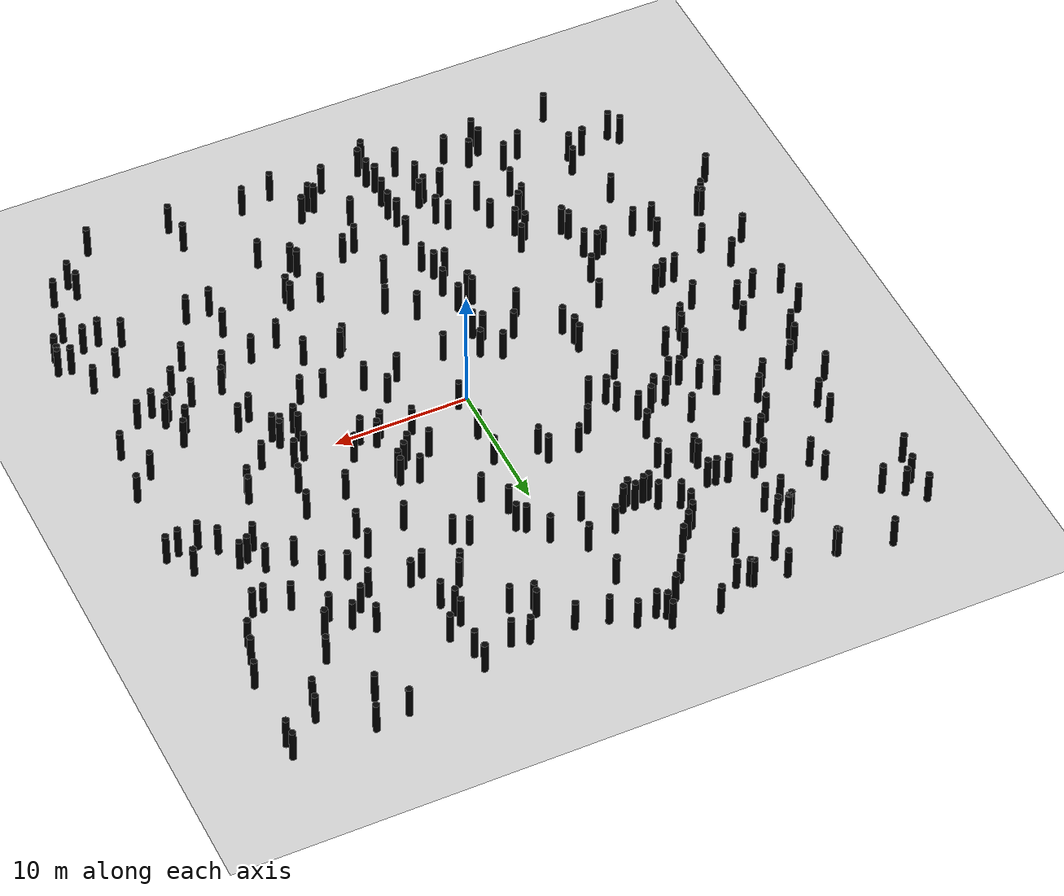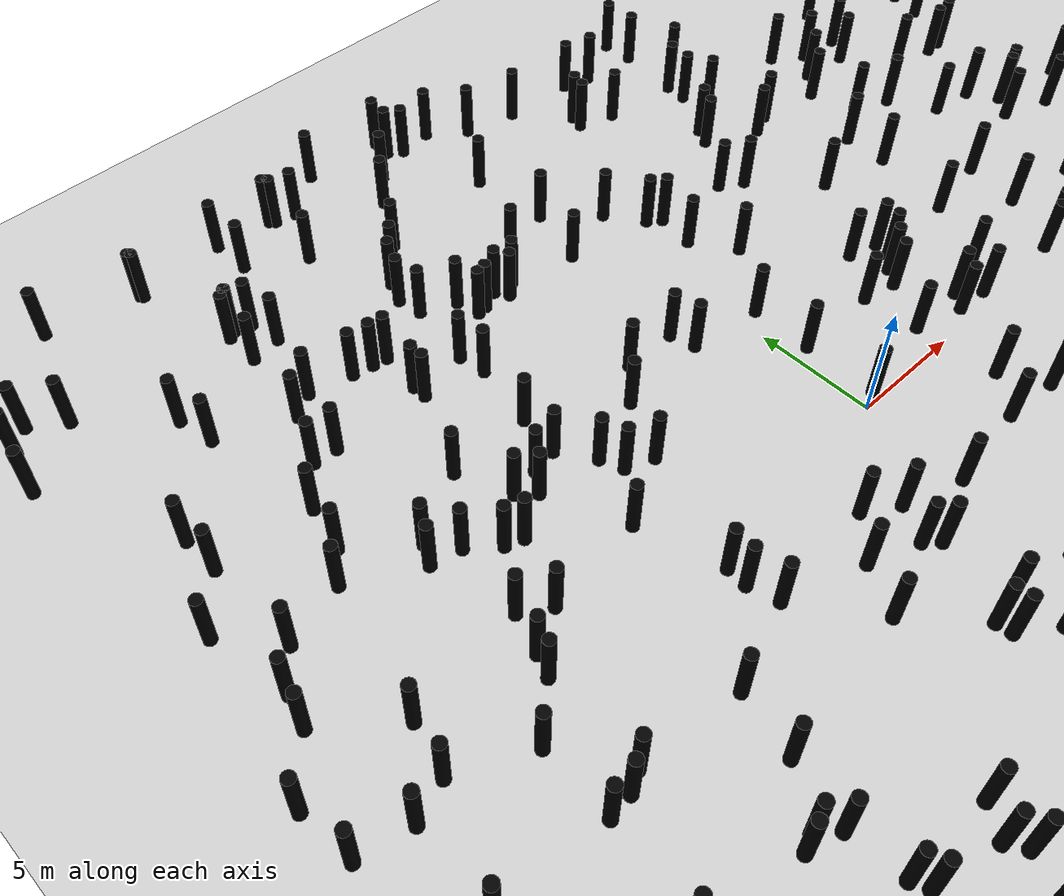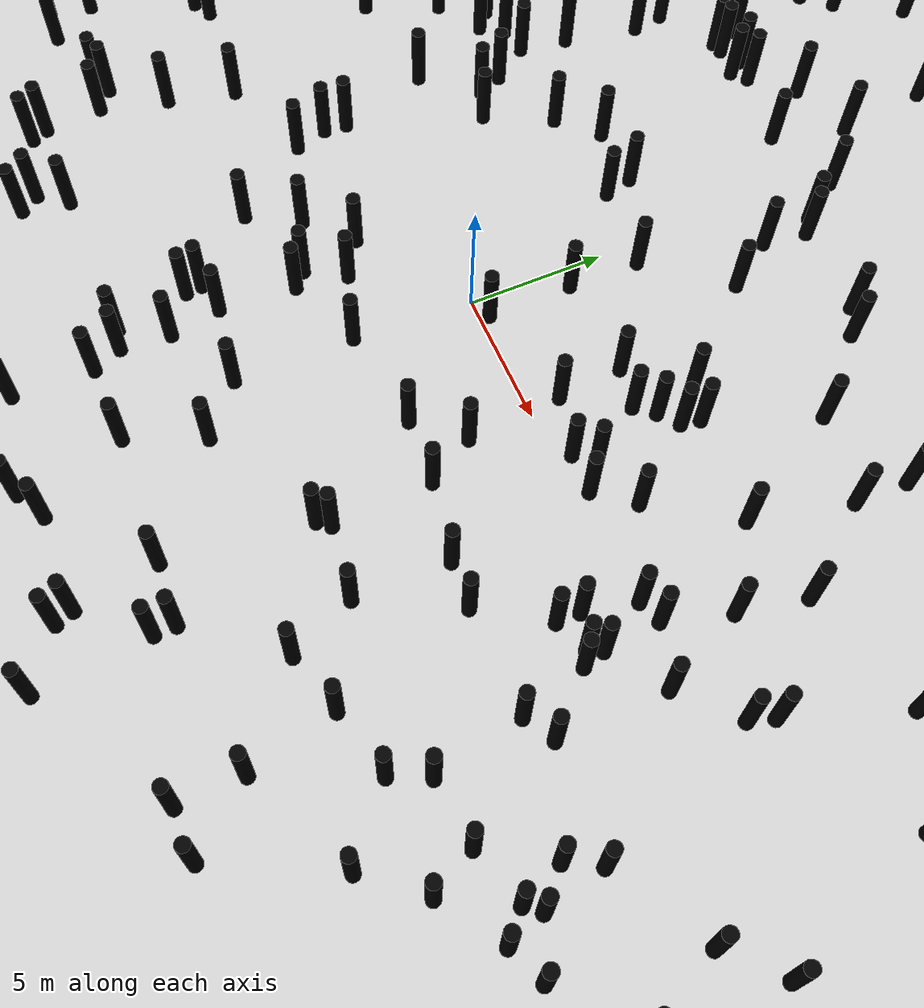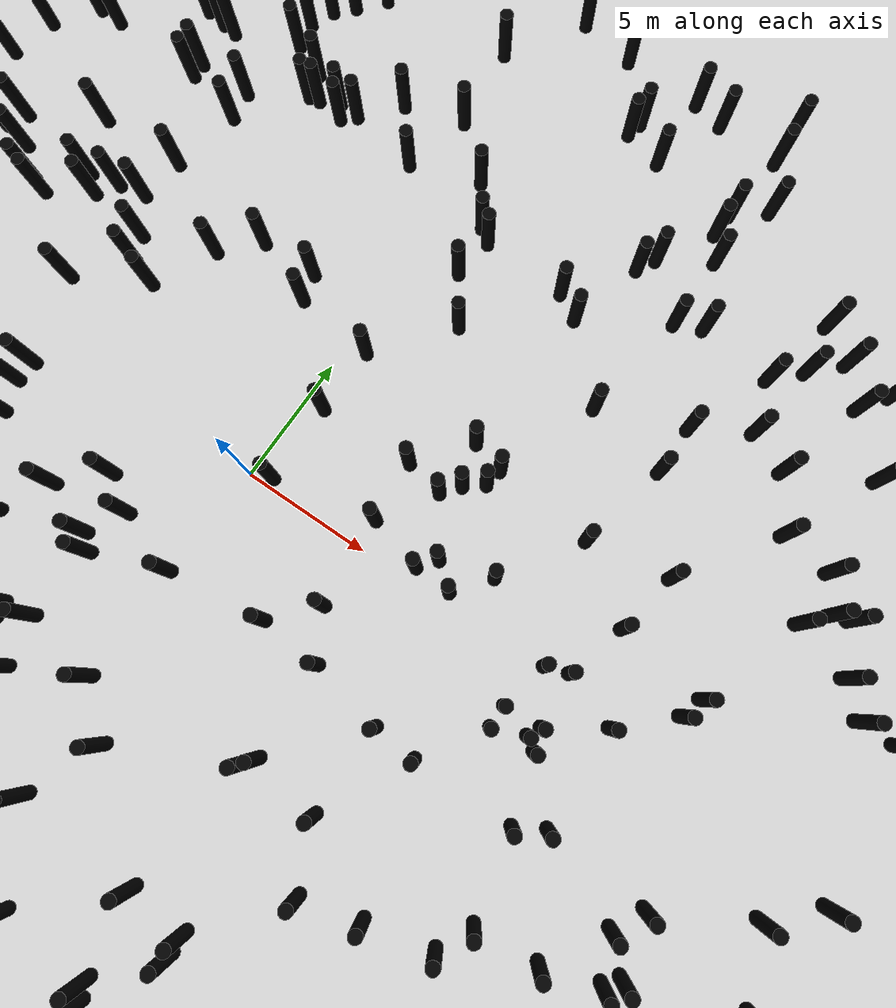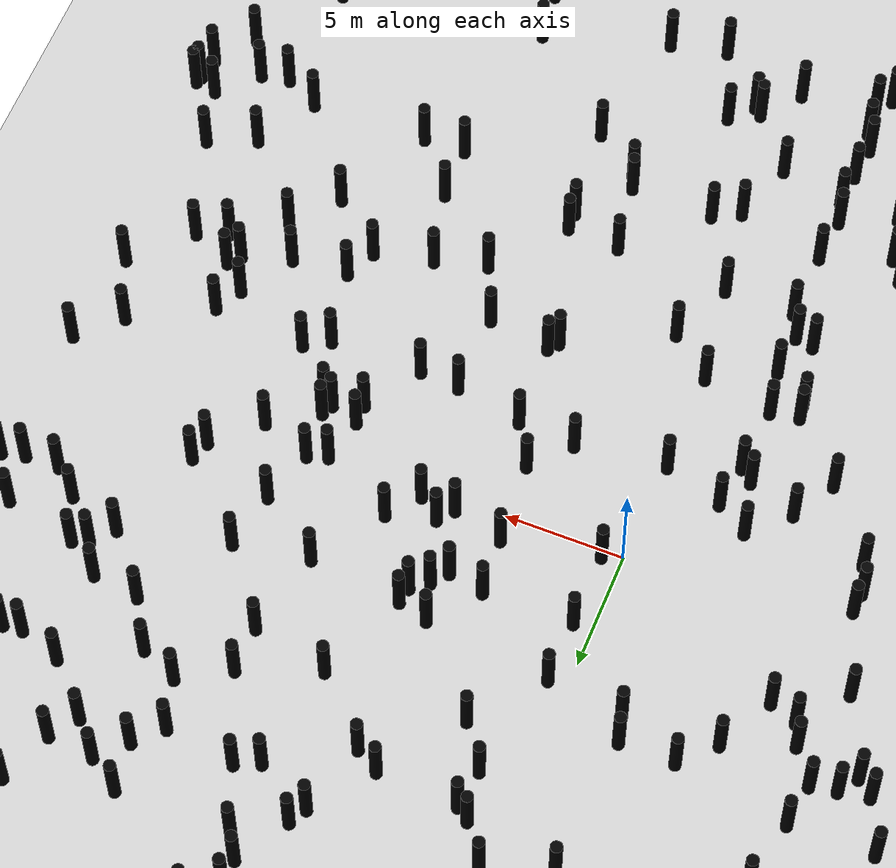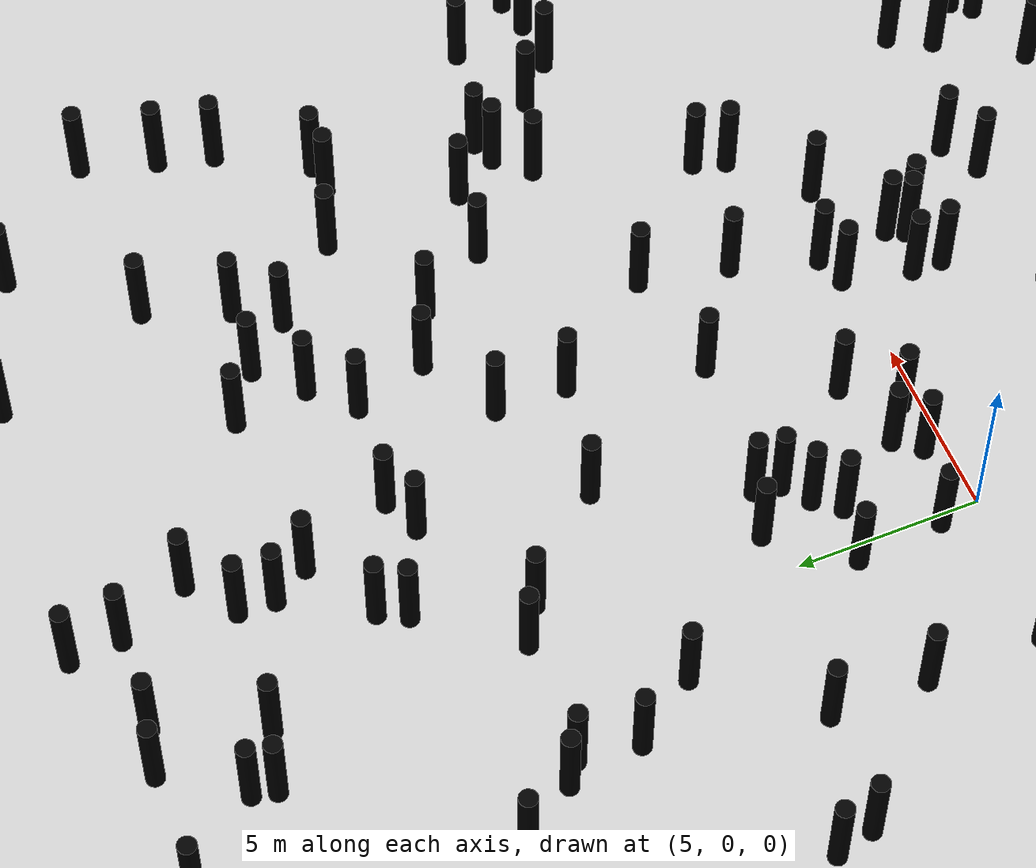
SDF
<?xml version="1.0"?>

<sdf version="1.6">
    <world name="medium">
        <physics name="4ms" type="ignored">
            <max_step_size>0.004</max_step_size>
            <real_time_factor>0.25</real_time_factor>
        </physics>
        <plugin
            filename="ignition-gazebo-physics-system"
            name="ignition::gazebo::systems::Physics">
        </plugin>
        <plugin
            filename="ignition-gazebo-scene-broadcaster-system"
            name="ignition::gazebo::systems::SceneBroadcaster">
        </plugin>
        <plugin
            filename="ignition-gazebo-user-commands-system"
            name="ignition::gazebo::systems::UserCommands">
        </plugin>
        <plugin
            filename="ignition-gazebo-sensors-system"
            name="ignition::gazebo::systems::Sensors">
            <render_engine>ogre2</render_engine>
        </plugin>

        <include>
            <uri>model://ground_plane</uri>
        </include>
        <include>
            <uri>model://pole</uri>
            <name>pole1</name>
            <pose>8.86 -8.12 0 0 0 0</pose>
        </include>
        <include>
            <uri>model://pole</uri>
            <name>pole2</name>
            <pose>5.49 12.17 0 0 0 0</pose>
        </include>
        <include>
            <uri>model://pole</uri>
            <name>pole3</name>
            <pose>-3.64 24.76 0 0 0 0</pose>
        </include>
        <include>
            <uri>model://pole</uri>
            <name>pole4</name>
            <pose>-6.11 14.06 0 0 0 0</pose>
        </include>
        <include>
            <uri>model://pole</uri>
            <name>pole5</name>
            <pose>9.91 -10.49 0 0 0 0</pose>
        </include>
        <include>
            <uri>model://pole</uri>
            <name>pole6</name>
            <pose>9.66 16.51 0 0 0 0</pose>
        </include>
        <include>
            <uri>model://pole</uri>
            <name>pole7</name>
            <pose>23.81 4.72 0 0 0 0</pose>
        </include>
        <include>
            <uri>model://pole</uri>
            <name>pole8</name>
            <pose>15.79 15.7 0 0 0 0</pose>
        </include>
        <include>
            <uri>model://pole</uri>
            <name>pole9</name>
            <pose>-2.5 -22.59 0 0 0 0</pose>
        </include>
        <include>
            <uri>model://pole</uri>
            <name>pole10</name>
            <pose>12.52 0.24 0 0 0 0</pose>
        </include>
        <include>
            <uri>model://pole</uri>
            <name>pole11</name>
            <pose>4.4 -24.26 0 0 0 0</pose>
        </include>
        <include>
            <uri>model://pole</uri>
            <name>pole12</name>
            <pose>18.83 12.42 0 0 0 0</pose>
        </include>
        <include>
            <uri>model://pole</uri>
            <name>pole13</name>
            <pose>-11.71 5.55 0 0 0 0</pose>
        </include>
        <include>
            <uri>model://pole</uri>
            <name>pole14</name>
            <pose>10.34 19.49 0 0 0 0</pose>
        </include>
        <include>
            <uri>model://pole</uri>
            <name>pole15</name>
            <pose>-23.54 8.69 0 0 0 0</pose>
        </include>
        <include>
            <uri>model://pole</uri>
            <name>pole16</name>
            <pose>-16.08 6.73 0 0 0 0</pose>
        </include>
        <include>
            <uri>model://pole</uri>
            <name>pole17</name>
            <pose>-6.05 -16.14 0 0 0 0</pose>
        </include>
        <include>
            <uri>model://pole</uri>
            <name>pole18</name>
            <pose>23.93 23.21 0 0 0 0</pose>
        </include>
        <include>
            <uri>model://pole</uri>
            <name>pole19</name>
            <pose>17.05 22.1 0 0 0 0</pose>
        </include>
        <include>
            <uri>model://pole</uri>
            <name>pole20</name>
            <pose>0.79 0.33 0 0 0 0</pose>
        </include>
        <include>
            <uri>model://pole</uri>
            <name>pole21</name>
            <pose>-10.55 -12.8 0 0 0 0</pose>
        </include>
        <include>
            <uri>model://pole</uri>
            <name>pole22</name>
            <pose>19.03 6.41 0 0 0 0</pose>
        </include>
        <include>
            <uri>model://pole</uri>
            <name>pole23</name>
            <pose>-8.18 17.99 0 0 0 0</pose>
        </include>
        <include>
            <uri>model://pole</uri>
            <name>pole24</name>
            <pose>19.52 -4.45 0 0 0 0</pose>
        </include>
        <include>
            <uri>model://pole</uri>
            <name>pole25</name>
            <pose>-6.9 -19.42 0 0 0 0</pose>
        </include>
        <include>
            <uri>model://pole</uri>
            <name>pole26</name>
            <pose>-22.87 5.32 0 0 0 0</pose>
        </include>
        <include>
            <uri>model://pole</uri>
            <name>pole27</name>
            <pose>4.05 19.33 0 0 0 0</pose>
        </include>
        <include>
            <uri>model://pole</uri>
            <name>pole28</name>
            <pose>-16.49 5.92 0 0 0 0</pose>
        </include>
        <include>
            <uri>model://pole</uri>
            <name>pole29</name>
            <pose>-24.7 -0.24 0 0 0 0</pose>
        </include>
        <include>
            <uri>model://pole</uri>
            <name>pole30</name>
            <pose>23.92 -5.19 0 0 0 0</pose>
        </include>
        <include>
            <uri>model://pole</uri>
            <name>pole31</name>
            <pose>-16.48 0.13 0 0 0 0</pose>
        </include>
        <include>
            <uri>model://pole</uri>
            <name>pole32</name>
            <pose>6.62 3.91 0 0 0 0</pose>
        </include>
        <include>
            <uri>model://pole</uri>
            <name>pole33</name>
            <pose>24.74 -14.73 0 0 0 0</pose>
        </include>
        <include>
            <uri>model://pole</uri>
            <name>pole34</name>
            <pose>-24.53 -5.99 0 0 0 0</pose>
        </include>
        <include>
            <uri>model://pole</uri>
            <name>pole35</name>
            <pose>0.17 -19.47 0 0 0 0</pose>
        </include>
        <include>
            <uri>model://pole</uri>
            <name>pole36</name>
            <pose>7.51 -13.47 0 0 0 0</pose>
        </include>
        <include>
            <uri>model://pole</uri>
            <name>pole37</name>
            <pose>-7.34 13.62 0 0 0 0</pose>
        </include>
        <include>
            <uri>model://pole</uri>
            <name>pole38</name>
            <pose>9.37 22.86 0 0 0 0</pose>
        </include>
        <include>
            <uri>model://pole</uri>
            <name>pole39</name>
            <pose>-21.78 6.7 0 0 0 0</pose>
        </include>
        <include>
            <uri>model://pole</uri>
            <name>pole40</name>
            <pose>-2.85 -10.18 0 0 0 0</pose>
        </include>
        <include>
            <uri>model://pole</uri>
            <name>pole41</name>
            <pose>-12.17 14.35 0 0 0 0</pose>
        </include>
        <include>
            <uri>model://pole</uri>
            <name>pole42</name>
            <pose>-11.14 6.36 0 0 0 0</pose>
        </include>
        <include>
            <uri>model://pole</uri>
            <name>pole43</name>
            <pose>-12.74 23.98 0 0 0 0</pose>
        </include>
        <include>
            <uri>model://pole</uri>
            <name>pole44</name>
            <pose>21.37 22.13 0 0 0 0</pose>
        </include>
        <include>
            <uri>model://pole</uri>
            <name>pole45</name>
            <pose>21.0 -22.09 0 0 0 0</pose>
        </include>
        <include>
            <uri>model://pole</uri>
            <name>pole46</name>
            <pose>-15.24 5.67 0 0 0 0</pose>
        </include>
        <include>
            <uri>model://pole</uri>
            <name>pole47</name>
            <pose>-20.49 -19.62 0 0 0 0</pose>
        </include>
        <include>
            <uri>model://pole</uri>
            <name>pole48</name>
            <pose>-14.87 14.88 0 0 0 0</pose>
        </include>
        <include>
            <uri>model://pole</uri>
            <name>pole49</name>
            <pose>-6.31 6.23 0 0 0 0</pose>
        </include>
        <include>
            <uri>model://pole</uri>
            <name>pole50</name>
            <pose>-5.75 13.52 0 0 0 0</pose>
        </include>
        <include>
            <uri>model://pole</uri>
            <name>pole51</name>
            <pose>17.74 15.52 0 0 0 0</pose>
        </include>
        <include>
            <uri>model://pole</uri>
            <name>pole52</name>
            <pose>-9.22 16.34 0 0 0 0</pose>
        </include>
        <include>
            <uri>model://pole</uri>
            <name>pole53</name>
            <pose>-10.05 6.56 0 0 0 0</pose>
        </include>
        <include>
            <uri>model://pole</uri>
            <name>pole54</name>
            <pose>-18.05 -18.91 0 0 0 0</pose>
        </include>
        <include>
            <uri>model://pole</uri>
            <name>pole55</name>
            <pose>0.44 -13.03 0 0 0 0</pose>
        </include>
        <include>
            <uri>model://pole</uri>
            <name>pole56</name>
            <pose>-11.03 -14.9 0 0 0 0</pose>
        </include>
        <include>
            <uri>model://pole</uri>
            <name>pole57</name>
            <pose>18.9 -5.58 0 0 0 0</pose>
        </include>
        <include>
            <uri>model://pole</uri>
            <name>pole58</name>
            <pose>-22.73 -4.12 0 0 0 0</pose>
        </include>
        <include>
            <uri>model://pole</uri>
            <name>pole59</name>
            <pose>1.84 10.69 0 0 0 0</pose>
        </include>
        <include>
            <uri>model://pole</uri>
            <name>pole60</name>
            <pose>-11.55 14.26 0 0 0 0</pose>
        </include>
        <include>
            <uri>model://pole</uri>
            <name>pole61</name>
            <pose>22.78 14.21 0 0 0 0</pose>
        </include>
        <include>
            <uri>model://pole</uri>
            <name>pole62</name>
            <pose>5.58 21.94 0 0 0 0</pose>
        </include>
        <include>
            <uri>model://pole</uri>
            <name>pole63</name>
            <pose>6.14 5.52 0 0 0 0</pose>
        </include>
        <include>
            <uri>model://pole</uri>
            <name>pole64</name>
            <pose>-4.08 -2.76 0 0 0 0</pose>
        </include>
        <include>
            <uri>model://pole</uri>
            <name>pole65</name>
            <pose>2.02 -21.78 0 0 0 0</pose>
        </include>
        <include>
            <uri>model://pole</uri>
            <name>pole66</name>
            <pose>-9.02 15.27 0 0 0 0</pose>
        </include>
        <include>
            <uri>model://pole</uri>
            <name>pole67</name>
            <pose>23.97 24.38 0 0 0 0</pose>
        </include>
        <include>
            <uri>model://pole</uri>
            <name>pole68</name>
            <pose>5.02 -2.34 0 0 0 0</pose>
        </include>
        <include>
            <uri>model://pole</uri>
            <name>pole69</name>
            <pose>-15.71 12.06 0 0 0 0</pose>
        </include>
        <include>
            <uri>model://pole</uri>
            <name>pole70</name>
            <pose>-4.39 -8.53 0 0 0 0</pose>
        </include>
        <include>
            <uri>model://pole</uri>
            <name>pole71</name>
            <pose>2.33 22.09 0 0 0 0</pose>
        </include>
        <include>
            <uri>model://pole</uri>
            <name>pole72</name>
            <pose>-10.09 -21.29 0 0 0 0</pose>
        </include>
        <include>
            <uri>model://pole</uri>
            <name>pole73</name>
            <pose>7.45 1.24 0 0 0 0</pose>
        </include>
        <include>
            <uri>model://pole</uri>
            <name>pole74</name>
            <pose>-6.67 -6.09 0 0 0 0</pose>
        </include>
        <include>
            <uri>model://pole</uri>
            <name>pole75</name>
            <pose>17.04 8.82 0 0 0 0</pose>
        </include>
        <include>
            <uri>model://pole</uri>
            <name>pole76</name>
            <pose>-4.31 -9.14 0 0 0 0</pose>
        </include>
        <include>
            <uri>model://pole</uri>
            <name>pole77</name>
            <pose>20.48 7.52 0 0 0 0</pose>
        </include>
        <include>
            <uri>model://pole</uri>
            <name>pole78</name>
            <pose>-10.06 23.58 0 0 0 0</pose>
        </include>
        <include>
            <uri>model://pole</uri>
            <name>pole79</name>
            <pose>-11.72 11.8 0 0 0 0</pose>
        </include>
        <include>
            <uri>model://pole</uri>
            <name>pole80</name>
            <pose>-21.11 -18.87 0 0 0 0</pose>
        </include>
        <include>
            <uri>model://pole</uri>
            <name>pole81</name>
            <pose>-3.55 -4.99 0 0 0 0</pose>
        </include>
        <include>
            <uri>model://pole</uri>
            <name>pole82</name>
            <pose>-11.2 -22.1 0 0 0 0</pose>
        </include>
        <include>
            <uri>model://pole</uri>
            <name>pole83</name>
            <pose>6.92 0.57 0 0 0 0</pose>
        </include>
        <include>
            <uri>model://pole</uri>
            <name>pole84</name>
            <pose>-22.88 -9.77 0 0 0 0</pose>
        </include>
        <include>
            <uri>model://pole</uri>
            <name>pole85</name>
            <pose>2.36 -22.07 0 0 0 0</pose>
        </include>
        <include>
            <uri>model://pole</uri>
            <name>pole86</name>
            <pose>-2.62 -15.98 0 0 0 0</pose>
        </include>
        <include>
            <uri>model://pole</uri>
            <name>pole87</name>
            <pose>-4.88 22.7 0 0 0 0</pose>
        </include>
        <include>
            <uri>model://pole</uri>
            <name>pole88</name>
            <pose>-21.44 -6.27 0 0 0 0</pose>
        </include>
        <include>
            <uri>model://pole</uri>
            <name>pole89</name>
            <pose>23.54 6.8 0 0 0 0</pose>
        </include>
        <include>
            <uri>model://pole</uri>
            <name>pole90</name>
            <pose>18.45 -24.62 0 0 0 0</pose>
        </include>
        <include>
            <uri>model://pole</uri>
            <name>pole91</name>
            <pose>-17.06 -23.33 0 0 0 0</pose>
        </include>
        <include>
            <uri>model://pole</uri>
            <name>pole92</name>
            <pose>-16.56 -17.37 0 0 0 0</pose>
        </include>
        <include>
            <uri>model://pole</uri>
            <name>pole93</name>
            <pose>19.56 -7.13 0 0 0 0</pose>
        </include>
        <include>
            <uri>model://pole</uri>
            <name>pole94</name>
            <pose>12.06 -22.14 0 0 0 0</pose>
        </include>
        <include>
            <uri>model://pole</uri>
            <name>pole95</name>
            <pose>-0.22 -4.41 0 0 0 0</pose>
        </include>
        <include>
            <uri>model://pole</uri>
            <name>pole96</name>
            <pose>-15.83 14.25 0 0 0 0</pose>
        </include>
        <include>
            <uri>model://pole</uri>
            <name>pole97</name>
            <pose>-16.6 23.6 0 0 0 0</pose>
        </include>
        <include>
            <uri>model://pole</uri>
            <name>pole98</name>
            <pose>7.35 14.6 0 0 0 0</pose>
        </include>
        <include>
            <uri>model://pole</uri>
            <name>pole99</name>
            <pose>14.44 16.62 0 0 0 0</pose>
        </include>
        <include>
            <uri>model://pole</uri>
            <name>pole100</name>
            <pose>-13.32 8.31 0 0 0 0</pose>
        </include>
        <include>
            <uri>model://pole</uri>
            <name>pole101</name>
            <pose>3.07 8.91 0 0 0 0</pose>
        </include>
        <include>
            <uri>model://pole</uri>
            <name>pole102</name>
            <pose>9.67 13.5 0 0 0 0</pose>
        </include>
        <include>
            <uri>model://pole</uri>
            <name>pole103</name>
            <pose>-12.24 -19.93 0 0 0 0</pose>
        </include>
        <include>
            <uri>model://pole</uri>
            <name>pole104</name>
            <pose>8.39 0.5 0 0 0 0</pose>
        </include>
        <include>
            <uri>model://pole</uri>
            <name>pole105</name>
            <pose>5.98 -16.96 0 0 0 0</pose>
        </include>
        <include>
            <uri>model://pole</uri>
            <name>pole106</name>
            <pose>-12.65 22.23 0 0 0 0</pose>
        </include>
        <include>
            <uri>model://pole</uri>
            <name>pole107</name>
            <pose>22.4 -15.75 0 0 0 0</pose>
        </include>
        <include>
            <uri>model://pole</uri>
            <name>pole108</name>
            <pose>7.53 -14.24 0 0 0 0</pose>
        </include>
        <include>
            <uri>model://pole</uri>
            <name>pole109</name>
            <pose>-14.11 4.76 0 0 0 0</pose>
        </include>
        <include>
            <uri>model://pole</uri>
            <name>pole110</name>
            <pose>14.53 5.26 0 0 0 0</pose>
        </include>
        <include>
            <uri>model://pole</uri>
            <name>pole111</name>
            <pose>-7.59 14.65 0 0 0 0</pose>
        </include>
        <include>
            <uri>model://pole</uri>
            <name>pole112</name>
            <pose>21.42 11.87 0 0 0 0</pose>
        </include>
        <include>
            <uri>model://pole</uri>
            <name>pole113</name>
            <pose>-12.38 -4.42 0 0 0 0</pose>
        </include>
        <include>
            <uri>model://pole</uri>
            <name>pole114</name>
            <pose>-3.68 23.87 0 0 0 0</pose>
        </include>
        <include>
            <uri>model://pole</uri>
            <name>pole115</name>
            <pose>-16.64 -3.97 0 0 0 0</pose>
        </include>
        <include>
            <uri>model://pole</uri>
            <name>pole116</name>
            <pose>14.69 14.59 0 0 0 0</pose>
        </include>
        <include>
            <uri>model://pole</uri>
            <name>pole117</name>
            <pose>22.78 -2.62 0 0 0 0</pose>
        </include>
        <include>
            <uri>model://pole</uri>
            <name>pole118</name>
            <pose>-21.12 -0.13 0 0 0 0</pose>
        </include>
        <include>
            <uri>model://pole</uri>
            <name>pole119</name>
            <pose>-18.27 -1.48 0 0 0 0</pose>
        </include>
        <include>
            <uri>model://pole</uri>
            <name>pole120</name>
            <pose>-2.67 7.57 0 0 0 0</pose>
        </include>
        <include>
            <uri>model://pole</uri>
            <name>pole121</name>
            <pose>-11.74 12.41 0 0 0 0</pose>
        </include>
        <include>
            <uri>model://pole</uri>
            <name>pole122</name>
            <pose>5.26 -13.31 0 0 0 0</pose>
        </include>
        <include>
            <uri>model://pole</uri>
            <name>pole123</name>
            <pose>17.57 2.32 0 0 0 0</pose>
        </include>
        <include>
            <uri>model://pole</uri>
            <name>pole124</name>
            <pose>13.37 0.52 0 0 0 0</pose>
        </include>
        <include>
            <uri>model://pole</uri>
            <name>pole125</name>
            <pose>1.5 12.76 0 0 0 0</pose>
        </include>
        <include>
            <uri>model://pole</uri>
            <name>pole126</name>
            <pose>-8.59 -22.4 0 0 0 0</pose>
        </include>
        <include>
            <uri>model://pole</uri>
            <name>pole127</name>
            <pose>-13.43 -11.58 0 0 0 0</pose>
        </include>
        <include>
            <uri>model://pole</uri>
            <name>pole128</name>
            <pose>0.77 3.47 0 0 0 0</pose>
        </include>
        <include>
            <uri>model://pole</uri>
            <name>pole129</name>
            <pose>0.42 14.3 0 0 0 0</pose>
        </include>
        <include>
            <uri>model://pole</uri>
            <name>pole130</name>
            <pose>-6.9 13.7 0 0 0 0</pose>
        </include>
        <include>
            <uri>model://pole</uri>
            <name>pole131</name>
            <pose>-13.39 4.51 0 0 0 0</pose>
        </include>
        <include>
            <uri>model://pole</uri>
            <name>pole132</name>
            <pose>6.85 21.64 0 0 0 0</pose>
        </include>
        <include>
            <uri>model://pole</uri>
            <name>pole133</name>
            <pose>15.84 10.79 0 0 0 0</pose>
        </include>
        <include>
            <uri>model://pole</uri>
            <name>pole134</name>
            <pose>-0.22 -8.8 0 0 0 0</pose>
        </include>
        <include>
            <uri>model://pole</uri>
            <name>pole135</name>
            <pose>-17.73 -9.9 0 0 0 0</pose>
        </include>
        <include>
            <uri>model://pole</uri>
            <name>pole136</name>
            <pose>22.36 4.69 0 0 0 0</pose>
        </include>
        <include>
            <uri>model://pole</uri>
            <name>pole137</name>
            <pose>23.19 15.7 0 0 0 0</pose>
        </include>
        <include>
            <uri>model://pole</uri>
            <name>pole138</name>
            <pose>-2.83 -21.8 0 0 0 0</pose>
        </include>
        <include>
            <uri>model://pole</uri>
            <name>pole139</name>
            <pose>-13.16 -12.19 0 0 0 0</pose>
        </include>
        <include>
            <uri>model://pole</uri>
            <name>pole140</name>
            <pose>12.09 -9.88 0 0 0 0</pose>
        </include>
        <include>
            <uri>model://pole</uri>
            <name>pole141</name>
            <pose>21.28 5.69 0 0 0 0</pose>
        </include>
        <include>
            <uri>model://pole</uri>
            <name>pole142</name>
            <pose>21.19 -15.97 0 0 0 0</pose>
        </include>
        <include>
            <uri>model://pole</uri>
            <name>pole143</name>
            <pose>22.57 -20.82 0 0 0 0</pose>
        </include>
        <include>
            <uri>model://pole</uri>
            <name>pole144</name>
            <pose>-12.98 -6.92 0 0 0 0</pose>
        </include>
        <include>
            <uri>model://pole</uri>
            <name>pole145</name>
            <pose>-10.26 23.76 0 0 0 0</pose>
        </include>
        <include>
            <uri>model://pole</uri>
            <name>pole146</name>
            <pose>20.81 -20.88 0 0 0 0</pose>
        </include>
        <include>
            <uri>model://pole</uri>
            <name>pole147</name>
            <pose>-7.54 3.82 0 0 0 0</pose>
        </include>
        <include>
            <uri>model://pole</uri>
            <name>pole148</name>
            <pose>-2.54 -18.91 0 0 0 0</pose>
        </include>
        <include>
            <uri>model://pole</uri>
            <name>pole149</name>
            <pose>12.94 -15.39 0 0 0 0</pose>
        </include>
        <include>
            <uri>model://pole</uri>
            <name>pole150</name>
            <pose>-13.62 -9.42 0 0 0 0</pose>
        </include>
        <include>
            <uri>model://pole</uri>
            <name>pole151</name>
            <pose>-20.58 24.47 0 0 0 0</pose>
        </include>
        <include>
            <uri>model://pole</uri>
            <name>pole152</name>
            <pose>-4.83 -22.69 0 0 0 0</pose>
        </include>
        <include>
            <uri>model://pole</uri>
            <name>pole153</name>
            <pose>-18.82 15.51 0 0 0 0</pose>
        </include>
        <include>
            <uri>model://pole</uri>
            <name>pole154</name>
            <pose>-9.07 5.17 0 0 0 0</pose>
        </include>
        <include>
            <uri>model://pole</uri>
            <name>pole155</name>
            <pose>13.78 -2.33 0 0 0 0</pose>
        </include>
        <include>
            <uri>model://pole</uri>
            <name>pole156</name>
            <pose>3.25 -21.11 0 0 0 0</pose>
        </include>
        <include>
            <uri>model://pole</uri>
            <name>pole157</name>
            <pose>-15.36 19.3 0 0 0 0</pose>
        </include>
        <include>
            <uri>model://pole</uri>
            <name>pole158</name>
            <pose>23.81 17.7 0 0 0 0</pose>
        </include>
        <include>
            <uri>model://pole</uri>
            <name>pole159</name>
            <pose>-2.68 -20.3 0 0 0 0</pose>
        </include>
        <include>
            <uri>model://pole</uri>
            <name>pole160</name>
            <pose>16.94 14.4 0 0 0 0</pose>
        </include>
        <include>
            <uri>model://pole</uri>
            <name>pole161</name>
            <pose>-24.37 19.87 0 0 0 0</pose>
        </include>
        <include>
            <uri>model://pole</uri>
            <name>pole162</name>
            <pose>-19.25 7.42 0 0 0 0</pose>
        </include>
        <include>
            <uri>model://pole</uri>
            <name>pole163</name>
            <pose>8.9 -4.67 0 0 0 0</pose>
        </include>
        <include>
            <uri>model://pole</uri>
            <name>pole164</name>
            <pose>21.74 -7.44 0 0 0 0</pose>
        </include>
        <include>
            <uri>model://pole</uri>
            <name>pole165</name>
            <pose>3.59 -3.92 0 0 0 0</pose>
        </include>
        <include>
            <uri>model://pole</uri>
            <name>pole166</name>
            <pose>9.45 21.45 0 0 0 0</pose>
        </include>
        <include>
            <uri>model://pole</uri>
            <name>pole167</name>
            <pose>-14.96 -9.06 0 0 0 0</pose>
        </include>
        <include>
            <uri>model://pole</uri>
            <name>pole168</name>
            <pose>1.07 -16.82 0 0 0 0</pose>
        </include>
        <include>
            <uri>model://pole</uri>
            <name>pole169</name>
            <pose>1.58 -10.32 0 0 0 0</pose>
        </include>
        <include>
            <uri>model://pole</uri>
            <name>pole170</name>
            <pose>-10.1 -13.49 0 0 0 0</pose>
        </include>
        <include>
            <uri>model://pole</uri>
            <name>pole171</name>
            <pose>18.04 24.54 0 0 0 0</pose>
        </include>
        <include>
            <uri>model://pole</uri>
            <name>pole172</name>
            <pose>15.54 -4.16 0 0 0 0</pose>
        </include>
        <include>
            <uri>model://pole</uri>
            <name>pole173</name>
            <pose>-1.55 23.7 0 0 0 0</pose>
        </include>
        <include>
            <uri>model://pole</uri>
            <name>pole174</name>
            <pose>-4.99 7.57 0 0 0 0</pose>
        </include>
        <include>
            <uri>model://pole</uri>
            <name>pole175</name>
            <pose>7.31 4.45 0 0 0 0</pose>
        </include>
        <include>
            <uri>model://pole</uri>
            <name>pole176</name>
            <pose>-1.59 16.11 0 0 0 0</pose>
        </include>
        <include>
            <uri>model://pole</uri>
            <name>pole177</name>
            <pose>-3.0 -12.0 0 0 0 0</pose>
        </include>
        <include>
            <uri>model://pole</uri>
            <name>pole178</name>
            <pose>4.56 3.55 0 0 0 0</pose>
        </include>
        <include>
            <uri>model://pole</uri>
            <name>pole179</name>
            <pose>-11.5 -17.3 0 0 0 0</pose>
        </include>
        <include>
            <uri>model://pole</uri>
            <name>pole180</name>
            <pose>-18.34 -4.46 0 0 0 0</pose>
        </include>
        <include>
            <uri>model://pole</uri>
            <name>pole181</name>
            <pose>10.69 13.94 0 0 0 0</pose>
        </include>
        <include>
            <uri>model://pole</uri>
            <name>pole182</name>
            <pose>-2.93 -24.52 0 0 0 0</pose>
        </include>
        <include>
            <uri>model://pole</uri>
            <name>pole183</name>
            <pose>6.03 -4.1 0 0 0 0</pose>
        </include>
        <include>
            <uri>model://pole</uri>
            <name>pole184</name>
            <pose>23.22 -11.82 0 0 0 0</pose>
        </include>
        <include>
            <uri>model://pole</uri>
            <name>pole185</name>
            <pose>6.8 -23.74 0 0 0 0</pose>
        </include>
        <include>
            <uri>model://pole</uri>
            <name>pole186</name>
            <pose>-3.19 -8.3 0 0 0 0</pose>
        </include>
        <include>
            <uri>model://pole</uri>
            <name>pole187</name>
            <pose>14.5 -4.76 0 0 0 0</pose>
        </include>
        <include>
            <uri>model://pole</uri>
            <name>pole188</name>
            <pose>-15.06 19.52 0 0 0 0</pose>
        </include>
        <include>
            <uri>model://pole</uri>
            <name>pole189</name>
            <pose>2.21 -16.23 0 0 0 0</pose>
        </include>
        <include>
            <uri>model://pole</uri>
            <name>pole190</name>
            <pose>8.96 9.03 0 0 0 0</pose>
        </include>
        <include>
            <uri>model://pole</uri>
            <name>pole191</name>
            <pose>18.38 -9.38 0 0 0 0</pose>
        </include>
        <include>
            <uri>model://pole</uri>
            <name>pole192</name>
            <pose>-5.62 -4.24 0 0 0 0</pose>
        </include>
        <include>
            <uri>model://pole</uri>
            <name>pole193</name>
            <pose>23.91 -14.25 0 0 0 0</pose>
        </include>
        <include>
            <uri>model://pole</uri>
            <name>pole194</name>
            <pose>-20.58 1.9 0 0 0 0</pose>
        </include>
        <include>
            <uri>model://pole</uri>
            <name>pole195</name>
            <pose>-1.98 19.56 0 0 0 0</pose>
        </include>
        <include>
            <uri>model://pole</uri>
            <name>pole196</name>
            <pose>9.43 1.81 0 0 0 0</pose>
        </include>
        <include>
            <uri>model://pole</uri>
            <name>pole197</name>
            <pose>-11.15 -23.16 0 0 0 0</pose>
        </include>
        <include>
            <uri>model://pole</uri>
            <name>pole198</name>
            <pose>-9.14 23.38 0 0 0 0</pose>
        </include>
        <include>
            <uri>model://pole</uri>
            <name>pole199</name>
            <pose>-10.34 20.84 0 0 0 0</pose>
        </include>
        <include>
            <uri>model://pole</uri>
            <name>pole200</name>
            <pose>-9.27 -1.96 0 0 0 0</pose>
        </include>
        <include>
            <uri>model://pole</uri>
            <name>pole201</name>
            <pose>12.22 10.29 0 0 0 0</pose>
        </include>
        <include>
            <uri>model://pole</uri>
            <name>pole202</name>
            <pose>-13.04 14.5 0 0 0 0</pose>
        </include>
        <include>
            <uri>model://pole</uri>
            <name>pole203</name>
            <pose>-5.91 21.38 0 0 0 0</pose>
        </include>
        <include>
            <uri>model://pole</uri>
            <name>pole204</name>
            <pose>-5.48 -17.04 0 0 0 0</pose>
        </include>
        <include>
            <uri>model://pole</uri>
            <name>pole205</name>
            <pose>-19.15 17.09 0 0 0 0</pose>
        </include>
        <include>
            <uri>model://pole</uri>
            <name>pole206</name>
            <pose>-21.97 12.42 0 0 0 0</pose>
        </include>
        <include>
            <uri>model://pole</uri>
            <name>pole207</name>
            <pose>19.72 -15.2 0 0 0 0</pose>
        </include>
        <include>
            <uri>model://pole</uri>
            <name>pole208</name>
            <pose>11.37 4.73 0 0 0 0</pose>
        </include>
        <include>
            <uri>model://pole</uri>
            <name>pole209</name>
            <pose>6.21 -7.73 0 0 0 0</pose>
        </include>
        <include>
            <uri>model://pole</uri>
            <name>pole210</name>
            <pose>-18.37 8.61 0 0 0 0</pose>
        </include>
        <include>
            <uri>model://pole</uri>
            <name>pole211</name>
            <pose>20.44 -7.97 0 0 0 0</pose>
        </include>
        <include>
            <uri>model://pole</uri>
            <name>pole212</name>
            <pose>-10.28 2.33 0 0 0 0</pose>
        </include>
        <include>
            <uri>model://pole</uri>
            <name>pole213</name>
            <pose>-7.31 18.99 0 0 0 0</pose>
        </include>
        <include>
            <uri>model://pole</uri>
            <name>pole214</name>
            <pose>9.11 18.52 0 0 0 0</pose>
        </include>
        <include>
            <uri>model://pole</uri>
            <name>pole215</name>
            <pose>-12.39 6.13 0 0 0 0</pose>
        </include>
        <include>
            <uri>model://pole</uri>
            <name>pole216</name>
            <pose>-11.56 -15.49 0 0 0 0</pose>
        </include>
        <include>
            <uri>model://pole</uri>
            <name>pole217</name>
            <pose>-3.78 -11.84 0 0 0 0</pose>
        </include>
        <include>
            <uri>model://pole</uri>
            <name>pole218</name>
            <pose>-14.05 17.97 0 0 0 0</pose>
        </include>
        <include>
            <uri>model://pole</uri>
            <name>pole219</name>
            <pose>12.11 -1.64 0 0 0 0</pose>
        </include>
        <include>
            <uri>model://pole</uri>
            <name>pole220</name>
            <pose>24.84 -14.43 0 0 0 0</pose>
        </include>
        <include>
            <uri>model://pole</uri>
            <name>pole221</name>
            <pose>-22.15 19.84 0 0 0 0</pose>
        </include>
        <include>
            <uri>model://pole</uri>
            <name>pole222</name>
            <pose>12.19 8.32 0 0 0 0</pose>
        </include>
        <include>
            <uri>model://pole</uri>
            <name>pole223</name>
            <pose>-2.73 -3.6 0 0 0 0</pose>
        </include>
        <include>
            <uri>model://pole</uri>
            <name>pole224</name>
            <pose>-24.92 2.0 0 0 0 0</pose>
        </include>
        <include>
            <uri>model://pole</uri>
            <name>pole225</name>
            <pose>0.8 6.12 0 0 0 0</pose>
        </include>
        <include>
            <uri>model://pole</uri>
            <name>pole226</name>
            <pose>-15.09 19.48 0 0 0 0</pose>
        </include>
        <include>
            <uri>model://pole</uri>
            <name>pole227</name>
            <pose>-22.64 -0.68 0 0 0 0</pose>
        </include>
        <include>
            <uri>model://pole</uri>
            <name>pole228</name>
            <pose>-5.54 -20.79 0 0 0 0</pose>
        </include>
        <include>
            <uri>model://pole</uri>
            <name>pole229</name>
            <pose>-23.52 20.75 0 0 0 0</pose>
        </include>
        <include>
            <uri>model://pole</uri>
            <name>pole230</name>
            <pose>-17.35 -4.35 0 0 0 0</pose>
        </include>
        <include>
            <uri>model://pole</uri>
            <name>pole231</name>
            <pose>17.29 1.45 0 0 0 0</pose>
        </include>
        <include>
            <uri>model://pole</uri>
            <name>pole232</name>
            <pose>-14.51 1.84 0 0 0 0</pose>
        </include>
        <include>
            <uri>model://pole</uri>
            <name>pole233</name>
            <pose>14.73 -15.34 0 0 0 0</pose>
        </include>
        <include>
            <uri>model://pole</uri>
            <name>pole234</name>
            <pose>-9.27 11.17 0 0 0 0</pose>
        </include>
        <include>
            <uri>model://pole</uri>
            <name>pole235</name>
            <pose>14.27 11.5 0 0 0 0</pose>
        </include>
        <include>
            <uri>model://pole</uri>
            <name>pole236</name>
            <pose>-5.05 -18.99 0 0 0 0</pose>
        </include>
        <include>
            <uri>model://pole</uri>
            <name>pole237</name>
            <pose>-15.34 17.75 0 0 0 0</pose>
        </include>
        <include>
            <uri>model://pole</uri>
            <name>pole238</name>
            <pose>16.8 -11.24 0 0 0 0</pose>
        </include>
        <include>
            <uri>model://pole</uri>
            <name>pole239</name>
            <pose>-13.66 -20.58 0 0 0 0</pose>
        </include>
        <include>
            <uri>model://pole</uri>
            <name>pole240</name>
            <pose>-15.65 2.55 0 0 0 0</pose>
        </include>
        <include>
            <uri>model://pole</uri>
            <name>pole241</name>
            <pose>-23.1 -9.65 0 0 0 0</pose>
        </include>
        <include>
            <uri>model://pole</uri>
            <name>pole242</name>
            <pose>-2.39 6.51 0 0 0 0</pose>
        </include>
        <include>
            <uri>model://pole</uri>
            <name>pole243</name>
            <pose>23.31 -17.33 0 0 0 0</pose>
        </include>
        <include>
            <uri>model://pole</uri>
            <name>pole244</name>
            <pose>15.51 24.22 0 0 0 0</pose>
        </include>
        <include>
            <uri>model://pole</uri>
            <name>pole245</name>
            <pose>4.2 19.97 0 0 0 0</pose>
        </include>
        <include>
            <uri>model://pole</uri>
            <name>pole246</name>
            <pose>-16.16 0.98 0 0 0 0</pose>
        </include>
        <include>
            <uri>model://pole</uri>
            <name>pole247</name>
            <pose>-23.4 -10.41 0 0 0 0</pose>
        </include>
        <include>
            <uri>model://pole</uri>
            <name>pole248</name>
            <pose>17.53 -7.76 0 0 0 0</pose>
        </include>
        <include>
            <uri>model://pole</uri>
            <name>pole249</name>
            <pose>-17.96 10.5 0 0 0 0</pose>
        </include>
        <include>
            <uri>model://pole</uri>
            <name>pole250</name>
            <pose>-9.21 -1.1 0 0 0 0</pose>
        </include>
        <include>
            <uri>model://pole</uri>
            <name>pole251</name>
            <pose>7.75 15.34 0 0 0 0</pose>
        </include>
        <include>
            <uri>model://pole</uri>
            <name>pole252</name>
            <pose>-3.07 23.47 0 0 0 0</pose>
        </include>
        <include>
            <uri>model://pole</uri>
            <name>pole253</name>
            <pose>20.6 11.8 0 0 0 0</pose>
        </include>
        <include>
            <uri>model://pole</uri>
            <name>pole254</name>
            <pose>0.0 22.57 0 0 0 0</pose>
        </include>
        <include>
            <uri>model://pole</uri>
            <name>pole255</name>
            <pose>12.32 -24.28 0 0 0 0</pose>
        </include>
        <include>
            <uri>model://pole</uri>
            <name>pole256</name>
            <pose>-8.83 17.31 0 0 0 0</pose>
        </include>
        <include>
            <uri>model://pole</uri>
            <name>pole257</name>
            <pose>7.92 -18.33 0 0 0 0</pose>
        </include>
        <include>
            <uri>model://pole</uri>
            <name>pole258</name>
            <pose>-2.39 -23.84 0 0 0 0</pose>
        </include>
        <include>
            <uri>model://pole</uri>
            <name>pole259</name>
            <pose>-9.8 8.37 0 0 0 0</pose>
        </include>
        <include>
            <uri>model://pole</uri>
            <name>pole260</name>
            <pose>-14.33 19.32 0 0 0 0</pose>
        </include>
        <include>
            <uri>model://pole</uri>
            <name>pole261</name>
            <pose>5.75 -16.31 0 0 0 0</pose>
        </include>
        <include>
            <uri>model://pole</uri>
            <name>pole262</name>
            <pose>15.16 -7.98 0 0 0 0</pose>
        </include>
        <include>
            <uri>model://pole</uri>
            <name>pole263</name>
            <pose>-24.78 17.91 0 0 0 0</pose>
        </include>
        <include>
            <uri>model://pole</uri>
            <name>pole264</name>
            <pose>-24.92 -12.61 0 0 0 0</pose>
        </include>
        <include>
            <uri>model://pole</uri>
            <name>pole265</name>
            <pose>24.56 -15.73 0 0 0 0</pose>
        </include>
        <include>
            <uri>model://pole</uri>
            <name>pole266</name>
            <pose>9.06 17.52 0 0 0 0</pose>
        </include>
        <include>
            <uri>model://pole</uri>
            <name>pole267</name>
            <pose>6.08 3.25 0 0 0 0</pose>
        </include>
        <include>
            <uri>model://pole</uri>
            <name>pole268</name>
            <pose>13.65 13.54 0 0 0 0</pose>
        </include>
        <include>
            <uri>model://pole</uri>
            <name>pole269</name>
            <pose>-24.62 21.87 0 0 0 0</pose>
        </include>
        <include>
            <uri>model://pole</uri>
            <name>pole270</name>
            <pose>-18.82 -8.21 0 0 0 0</pose>
        </include>
        <include>
            <uri>model://pole</uri>
            <name>pole271</name>
            <pose>-5.23 13.97 0 0 0 0</pose>
        </include>
        <include>
            <uri>model://pole</uri>
            <name>pole272</name>
            <pose>-14.38 -8.83 0 0 0 0</pose>
        </include>
        <include>
            <uri>model://pole</uri>
            <name>pole273</name>
            <pose>12.89 -13.07 0 0 0 0</pose>
        </include>
        <include>
            <uri>model://pole</uri>
            <name>pole274</name>
            <pose>19.81 7.28 0 0 0 0</pose>
        </include>
        <include>
            <uri>model://pole</uri>
            <name>pole275</name>
            <pose>-2.52 -13.06 0 0 0 0</pose>
        </include>
        <include>
            <uri>model://pole</uri>
            <name>pole276</name>
            <pose>21.2 -12.64 0 0 0 0</pose>
        </include>
        <include>
            <uri>model://pole</uri>
            <name>pole277</name>
            <pose>-8.7 4.24 0 0 0 0</pose>
        </include>
        <include>
            <uri>model://pole</uri>
            <name>pole278</name>
            <pose>5.66 18.87 0 0 0 0</pose>
        </include>
        <include>
            <uri>model://pole</uri>
            <name>pole279</name>
            <pose>4.76 1.15 0 0 0 0</pose>
        </include>
        <include>
            <uri>model://pole</uri>
            <name>pole280</name>
            <pose>13.31 -2.02 0 0 0 0</pose>
        </include>
        <include>
            <uri>model://pole</uri>
            <name>pole281</name>
            <pose>15.49 -0.24 0 0 0 0</pose>
        </include>
        <include>
            <uri>model://pole</uri>
            <name>pole282</name>
            <pose>-8.91 -3.17 0 0 0 0</pose>
        </include>
        <include>
            <uri>model://pole</uri>
            <name>pole283</name>
            <pose>20.95 20.72 0 0 0 0</pose>
        </include>
        <include>
            <uri>model://pole</uri>
            <name>pole284</name>
            <pose>0.73 -23.36 0 0 0 0</pose>
        </include>
        <include>
            <uri>model://pole</uri>
            <name>pole285</name>
            <pose>19.03 8.56 0 0 0 0</pose>
        </include>
        <include>
            <uri>model://pole</uri>
            <name>pole286</name>
            <pose>10.59 -4.8 0 0 0 0</pose>
        </include>
        <include>
            <uri>model://pole</uri>
            <name>pole287</name>
            <pose>12.11 -2.49 0 0 0 0</pose>
        </include>
        <include>
            <uri>model://pole</uri>
            <name>pole288</name>
            <pose>19.98 -6.63 0 0 0 0</pose>
        </include>
        <include>
            <uri>model://pole</uri>
            <name>pole289</name>
            <pose>24.78 4.95 0 0 0 0</pose>
        </include>
        <include>
            <uri>model://pole</uri>
            <name>pole290</name>
            <pose>-2.8 -17.93 0 0 0 0</pose>
        </include>
        <include>
            <uri>model://pole</uri>
            <name>pole291</name>
            <pose>-16.72 12.11 0 0 0 0</pose>
        </include>
        <include>
            <uri>model://pole</uri>
            <name>pole292</name>
            <pose>-19.16 -9.78 0 0 0 0</pose>
        </include>
        <include>
            <uri>model://pole</uri>
            <name>pole293</name>
            <pose>-16.68 23.71 0 0 0 0</pose>
        </include>
        <include>
            <uri>model://pole</uri>
            <name>pole294</name>
            <pose>-23.22 4.04 0 0 0 0</pose>
        </include>
        <include>
            <uri>model://pole</uri>
            <name>pole295</name>
            <pose>13.55 -1.53 0 0 0 0</pose>
        </include>
        <include>
            <uri>model://pole</uri>
            <name>pole296</name>
            <pose>-9.46 12.35 0 0 0 0</pose>
        </include>
        <include>
            <uri>model://pole</uri>
            <name>pole297</name>
            <pose>-9.79 -11.76 0 0 0 0</pose>
        </include>
        <include>
            <uri>model://pole</uri>
            <name>pole298</name>
            <pose>-3.95 15.41 0 0 0 0</pose>
        </include>
        <include>
            <uri>model://pole</uri>
            <name>pole299</name>
            <pose>-17.81 -13.64 0 0 0 0</pose>
        </include>
        <include>
            <uri>model://pole</uri>
            <name>pole300</name>
            <pose>2.06 12.34 0 0 0 0</pose>
        </include>
        <include>
            <uri>model://pole</uri>
            <name>pole301</name>
            <pose>14.06 2.82 0 0 0 0</pose>
        </include>
        <include>
            <uri>model://pole</uri>
            <name>pole302</name>
            <pose>24.41 -1.05 0 0 0 0</pose>
        </include>
        <include>
            <uri>model://pole</uri>
            <name>pole303</name>
            <pose>-2.33 13.4 0 0 0 0</pose>
        </include>
        <include>
            <uri>model://pole</uri>
            <name>pole304</name>
            <pose>5.87 -8.15 0 0 0 0</pose>
        </include>
        <include>
            <uri>model://pole</uri>
            <name>pole305</name>
            <pose>-21.92 10.78 0 0 0 0</pose>
        </include>
        <include>
            <uri>model://pole</uri>
            <name>pole306</name>
            <pose>6.49 11.57 0 0 0 0</pose>
        </include>
        <include>
            <uri>model://pole</uri>
            <name>pole307</name>
            <pose>7.43 5.15 0 0 0 0</pose>
        </include>
        <include>
            <uri>model://pole</uri>
            <name>pole308</name>
            <pose>-8.83 -14.98 0 0 0 0</pose>
        </include>
        <include>
            <uri>model://pole</uri>
            <name>pole309</name>
            <pose>-7.19 24.91 0 0 0 0</pose>
        </include>
        <include>
            <uri>model://pole</uri>
            <name>pole310</name>
            <pose>-5.52 -19.3 0 0 0 0</pose>
        </include>
        <include>
            <uri>model://pole</uri>
            <name>pole311</name>
            <pose>-8.72 -17.0 0 0 0 0</pose>
        </include>
        <include>
            <uri>model://pole</uri>
            <name>pole312</name>
            <pose>18.63 17.75 0 0 0 0</pose>
        </include>
        <include>
            <uri>model://pole</uri>
            <name>pole313</name>
            <pose>-3.0 -5.48 0 0 0 0</pose>
        </include>
        <include>
            <uri>model://pole</uri>
            <name>pole314</name>
            <pose>-16.92 -18.79 0 0 0 0</pose>
        </include>
        <include>
            <uri>model://pole</uri>
            <name>pole315</name>
            <pose>14.55 -9.29 0 0 0 0</pose>
        </include>

    </world>
</sdf>

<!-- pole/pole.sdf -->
<sdf version="1.9">
    <model name="pole">
        <link name="pole">

            <visual name='visual'>
                <geometry>
                    <cylinder>
                        <radius>0.25</radius>
                        <length>5.0</length>
                    </cylinder>
                </geometry>
                <material>
                    <diffuse>0 0 0 1</diffuse>
                </material>
            </visual>

            <inertial>
                <mass>0.005</mass>
                <inertia>
                    <ixx>8.33e-06</ixx>
                    <ixy>0</ixy>
                    <ixz>0</ixz>
                    <iyy>8.33e-06</iyy>
                    <iyz>0</iyz>
                    <izz>8.33e-06</izz>
                </inertia>
            </inertial>

            <collision name="collision">
                <geometry>
                    <cylinder>
                        <radius>0.25</radius>
                        <length>5.0</length>
                    </cylinder>
                </geometry>
            </collision>
        </link>
        <frame name="mount_point"/>
    </model>
</sdf>
